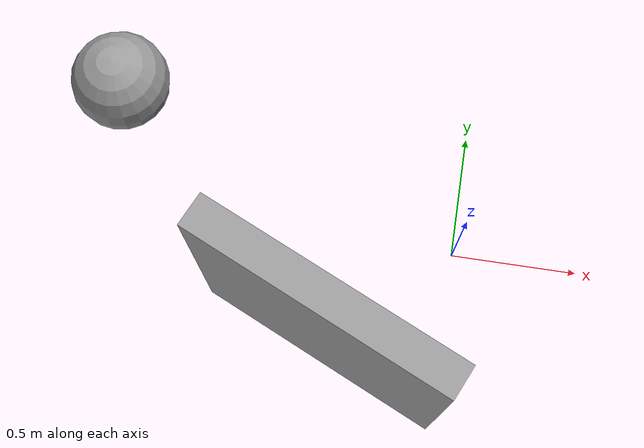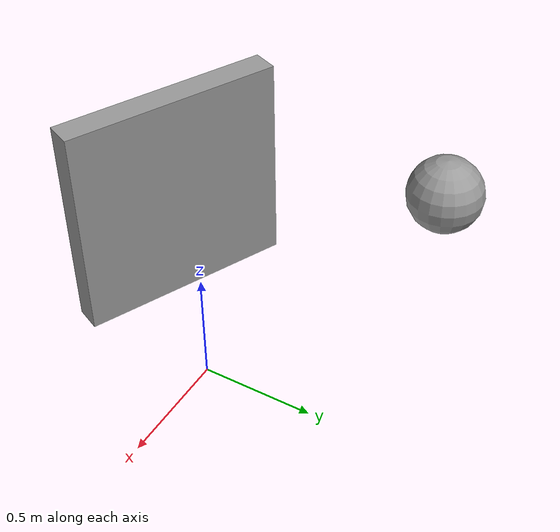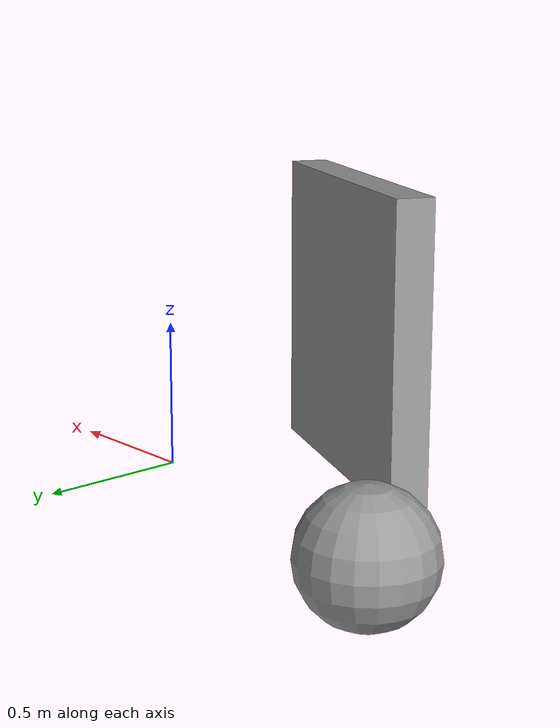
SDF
<sdf version="1.6">
 <world name="utah_desert">
  <light name="sun" type="directional">
   <pose>0 0 10 0 -0 0</pose>
   <diffuse>0.8 0.8 0.8 1</diffuse>
   <specular>0.2 0.2 0.2 1</specular>
   <attenuation>
    <range>1000</range>
    <constant>0.9</constant>
    <linear>0.01</linear>
    <quadratic>0.001</quadratic>
   </attenuation>
   <direction>-0.5 0.1 -0.9</direction>
  </light>
  <model name="utah_desert">
   <static>1</static>
   <link name="link">
    <collision name="collision">
     <surface><friction><ode><mu>100</mu><mu2>50</mu2></ode></friction></surface>
    </collision>
   </link>
  </model>
  <gravity>0 0 -9.8</gravity>
  <magnetic_field>6e-06 2.3e-05 -4.2e-05</magnetic_field>
  <atmosphere type="adiabatic"/>
  <physics name="default_physics" default="0" type="ode">
   <max_step_size>0.001</max_step_size>
   <real_time_factor>1</real_time_factor>
   <real_time_update_rate>1000</real_time_update_rate>
  </physics>
  <scene><ambient>0.4 0.4 0.4 1</ambient><background>0.7 0.7 0.7 1</background><shadows>1</shadows></scene>
  <spherical_coordinates>
   <surface_model>EARTH_WGS84</surface_model>
   <latitude_deg>0</latitude_deg>
   <longitude_deg>0</longitude_deg>
   <elevation>0</elevation>
   <heading_deg>0</heading_deg>
  </spherical_coordinates>
  <model name="unit_box">
   <pose>-0.448057 -0.439716 0.5 -1e-06 0 -0.420749</pose>
   <link name="link">
    <inertial>
     <mass>1</mass>
     <inertia>
      <ixx>0.166667</ixx>
      <ixy>0</ixy>
      <ixz>0</ixz>
      <iyy>0.166667</iyy>
      <iyz>0</iyz>
      <izz>0.166667</izz>
     </inertia>
    </inertial>
    <collision name="collision"><geometry><box><size>1 0.125965 1</size></box></geometry></collision>
    <visual name="visual">
     <geometry><box><size>1 0.125965 1</size></box></geometry>
     <material>
      <script><name>Gazebo/Grey</name><uri>file://media/materials/scripts/gazebo.material</uri></script>
     </material>
    </visual>
   </link>
  </model>
  <model name="unit_sphere">
   <pose>-1.42329 0.469946 0.198095 0 -0 0</pose>
   <link name="link">
    <inertial>
     <mass>1</mass>
     <inertia><ixx>0.1</ixx><ixy>0</ixy><ixz>0</ixz><iyy>0.1</iyy><iyz>0</iyz><izz>0.1</izz></inertia>
    </inertial>
    <collision name="collision"><geometry><sphere><radius>0.198095</radius></sphere></geometry></collision>
    <visual name="visual">
     <geometry><sphere><radius>0.198095</radius></sphere></geometry>
     <material>
      <script><name>Gazebo/Grey</name><uri>file://media/materials/scripts/gazebo.material</uri></script>
     </material>
    </visual>
   </link>
  </model>
 </world>
</sdf>
